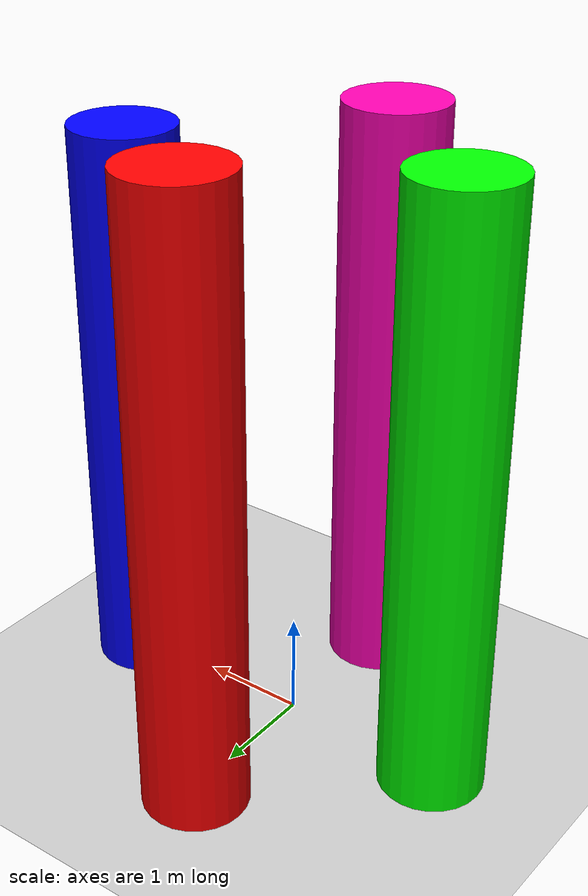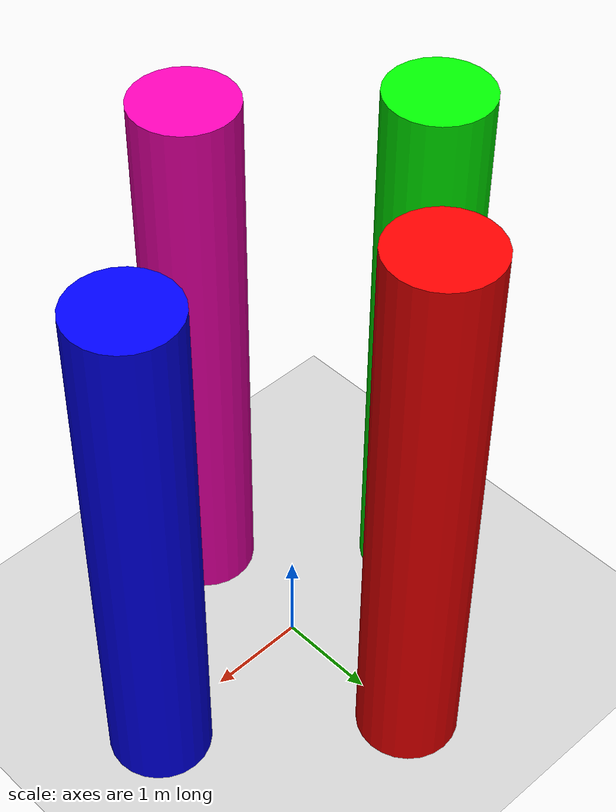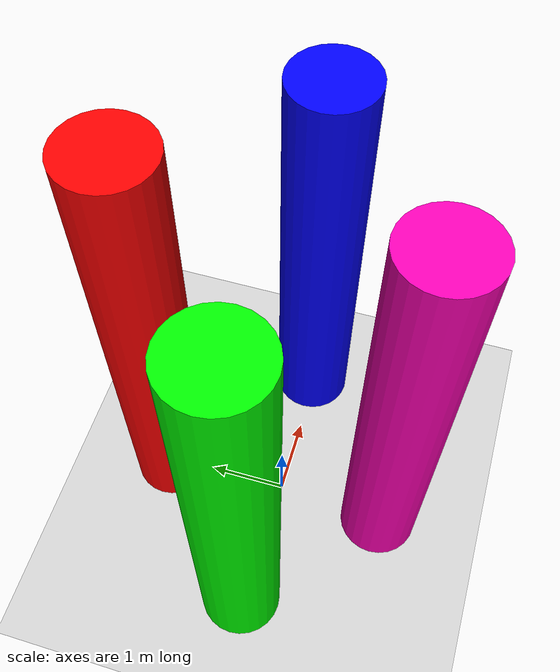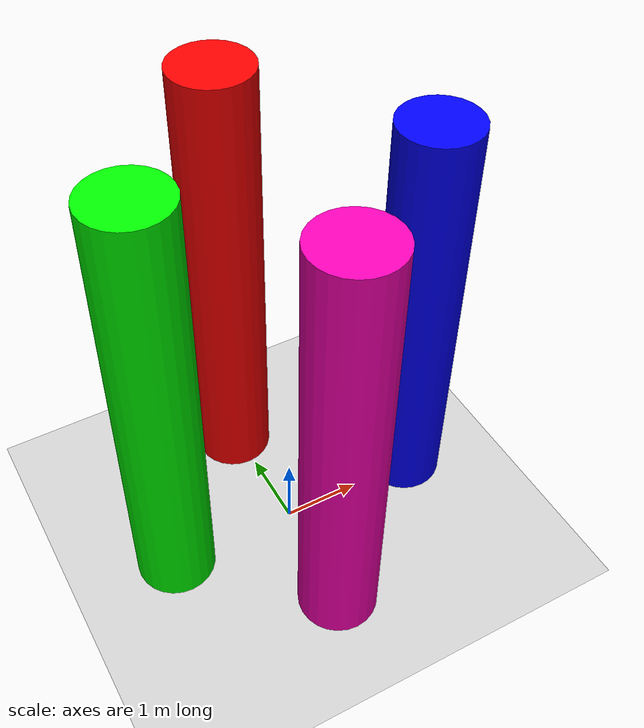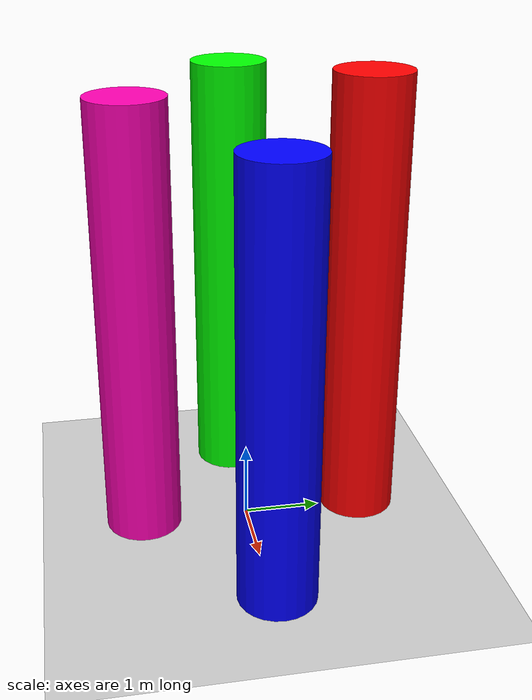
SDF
<sdf version="1.6">
 <world name="default">
  <light name="sun" type="directional">
   <pose>0 0 10 0 -0 0</pose>
   <diffuse>0.8 0.8 0.8 1</diffuse>
   <specular>0.1 0.1 0.1 1</specular>
   <attenuation>
    <range>1000</range>
    <constant>0.9</constant>
    <linear>0.01</linear>
    <quadratic>0.001</quadratic>
   </attenuation>
   <direction>-0.5 0.5 -1</direction>
  </light>
  <model name="ground_plane">
   <static>1</static>
   <link name="link">
    <collision name="collision">
     <geometry><plane><normal>0 0 1</normal><size>100 100</size></plane></geometry>
     <surface><friction><ode><mu>100</mu><mu2>50</mu2></ode></friction></surface>
    </collision>
    <visual name="visual">
     <cast_shadows>0</cast_shadows>
     <geometry><plane><normal>0 0 1</normal><size>100 100</size></plane></geometry>
     <material>
      <script><uri>file://media/materials/scripts/gazebo.material</uri><name>Gazebo/Grey</name></script>
     </material>
    </visual>
   </link>
  </model>
  <gravity>0 0 -9.8</gravity>
  <magnetic_field>6e-06 2.3e-05 -4.2e-05</magnetic_field>
  <atmosphere type="adiabatic"/>
  <physics name="default_physics" default="0" type="ode">
   <max_step_size>0.001</max_step_size>
   <real_time_factor>1</real_time_factor>
   <real_time_update_rate>1000</real_time_update_rate>
  </physics>
  <scene><ambient>0.4 0.4 0.4 1</ambient><background>0.7 0.7 0.7 1</background><shadows>1</shadows></scene>
  <spherical_coordinates>
   <surface_model>EARTH_WGS84</surface_model>
   <latitude_deg>0</latitude_deg>
   <longitude_deg>0</longitude_deg>
   <elevation>0</elevation>
   <heading_deg>0</heading_deg>
  </spherical_coordinates>
  <model name="unit_cylinder_0">
   <link name="link">
    <inertial>
     <mass>1</mass>
     <inertia><ixx>0.145833</ixx><ixy>0</ixy><ixz>0</ixz><iyy>0.145833</iyy><iyz>0</iyz><izz>0.125</izz></inertia>
    </inertial>
    <visual name="visual">
     <geometry><cylinder><radius>0.5</radius><length>5.56087</length></cylinder></geometry>
     <material>
      <script><name>Gazebo/Grey</name><uri>file://media/materials/scripts/gazebo.material</uri></script>
      <ambient>0 0 1 1</ambient>
      <diffuse>0 0 0 1</diffuse>
      <specular>0.01 0.01 0.01 1</specular>
      <emissive>0 0 0 1</emissive>
      <shader type="vertex"><normal_map>__default__</normal_map></shader>
     </material>
    </visual>
    <collision name="collision">
     <geometry><cylinder><radius>0.5</radius><length>5.56087</length></cylinder></geometry>
     <surface>
      <friction>
       <ode><mu>1</mu><mu2>1</mu2><fdir1>0 0 0</fdir1><slip1>0</slip1><slip2>0</slip2></ode>
       <torsional>
        <coefficient>1</coefficient>
        <patch_radius>0</patch_radius>
        <surface_radius>0</surface_radius>
        <use_patch_radius>1</use_patch_radius>
        <ode><slip>0</slip></ode>
       </torsional>
      </friction>
      <bounce><restitution_coefficient>0</restitution_coefficient><threshold>1e+06</threshold></bounce>
      <contact>
       <collide_without_contact>0</collide_without_contact>
       <collide_without_contact_bitmask>1</collide_without_contact_bitmask>
       <collide_bitmask>1</collide_bitmask>
       <ode>
        <soft_cfm>0</soft_cfm>
        <soft_erp>0.2</soft_erp>
        <kp>1e+13</kp>
        <kd>1</kd>
        <max_vel>0.01</max_vel>
        <min_depth>0</min_depth>
       </ode>
       <bullet>
        <split_impulse>1</split_impulse>
        <split_impulse_penetration_threshold>-0.01</split_impulse_penetration_threshold>
        <soft_cfm>0</soft_cfm>
        <soft_erp>0.2</soft_erp>
        <kp>1e+13</kp>
        <kd>1</kd>
       </bullet>
      </contact>
     </surface>
    </collision>
   </link>
   <static>0</static>
   <pose>1.8323 0.061546 2.78043 0 -0 0.001191</pose>
  </model>
  <model name="unit_cylinder_1">
   <link name="link">
    <inertial>
     <mass>1</mass>
     <inertia><ixx>0.145833</ixx><ixy>0</ixy><ixz>0</ixz><iyy>0.145833</iyy><iyz>0</iyz><izz>0.125</izz></inertia>
    </inertial>
    <visual name="visual">
     <geometry><cylinder><radius>0.5</radius><length>5.76835</length></cylinder></geometry>
     <material>
      <script><name>Gazebo/Grey</name><uri>file://media/materials/scripts/gazebo.material</uri></script>
      <ambient>0.5 0.5 0.3 1</ambient>
      <diffuse>1 0 0.7 1</diffuse>
      <specular>0.01 0.01 0.01 1</specular>
      <emissive>0 0 0 1</emissive>
      <shader type="vertex"><normal_map>__default__</normal_map></shader>
     </material>
    </visual>
    <collision name="collision">
     <geometry><cylinder><radius>0.5</radius><length>5.76835</length></cylinder></geometry>
     <surface>
      <friction>
       <ode><mu>1</mu><mu2>1</mu2><fdir1>0 0 0</fdir1><slip1>0</slip1><slip2>0</slip2></ode>
       <torsional>
        <coefficient>1</coefficient>
        <patch_radius>0</patch_radius>
        <surface_radius>0</surface_radius>
        <use_patch_radius>1</use_patch_radius>
        <ode><slip>0</slip></ode>
       </torsional>
      </friction>
      <bounce><restitution_coefficient>0</restitution_coefficient><threshold>1e+06</threshold></bounce>
      <contact>
       <collide_without_contact>0</collide_without_contact>
       <collide_without_contact_bitmask>1</collide_without_contact_bitmask>
       <collide_bitmask>1</collide_bitmask>
       <ode>
        <soft_cfm>0</soft_cfm>
        <soft_erp>0.2</soft_erp>
        <kp>1e+13</kp>
        <kd>1</kd>
        <max_vel>0.01</max_vel>
        <min_depth>0</min_depth>
       </ode>
       <bullet>
        <split_impulse>1</split_impulse>
        <split_impulse_penetration_threshold>-0.01</split_impulse_penetration_threshold>
        <soft_cfm>0</soft_cfm>
        <soft_erp>0.2</soft_erp>
        <kp>1e+13</kp>
        <kd>1</kd>
       </bullet>
      </contact>
     </surface>
    </collision>
   </link>
   <static>0</static>
   <pose>-0.067005 -1.38928 2.88417 0 -0 0.001794</pose>
  </model>
  <model name="unit_cylinder_2">
   <link name="link">
    <inertial>
     <mass>1</mass>
     <inertia><ixx>0.145833</ixx><ixy>0</ixy><ixz>0</ixz><iyy>0.145833</iyy><iyz>0</iyz><izz>0.125</izz></inertia>
    </inertial>
    <visual name="visual">
     <geometry><cylinder><radius>0.5</radius><length>5.84379</length></cylinder></geometry>
     <material>
      <script><name>Gazebo/Grey</name><uri>file://media/materials/scripts/gazebo.material</uri></script>
      <ambient>0 1 0 1</ambient>
      <diffuse>0 1 0 1</diffuse>
      <specular>0.01 0.01 0.01 1</specular>
      <emissive>0 0 0 1</emissive>
      <shader type="vertex"><normal_map>__default__</normal_map></shader>
     </material>
    </visual>
    <collision name="collision">
     <geometry><cylinder><radius>0.5</radius><length>5.84379</length></cylinder></geometry>
     <surface>
      <friction>
       <ode><mu>1</mu><mu2>1</mu2><fdir1>0 0 0</fdir1><slip1>0</slip1><slip2>0</slip2></ode>
       <torsional>
        <coefficient>1</coefficient>
        <patch_radius>0</patch_radius>
        <surface_radius>0</surface_radius>
        <use_patch_radius>1</use_patch_radius>
        <ode><slip>0</slip></ode>
       </torsional>
      </friction>
      <bounce><restitution_coefficient>0</restitution_coefficient><threshold>1e+06</threshold></bounce>
      <contact>
       <collide_without_contact>0</collide_without_contact>
       <collide_without_contact_bitmask>1</collide_without_contact_bitmask>
       <collide_bitmask>1</collide_bitmask>
       <ode>
        <soft_cfm>0</soft_cfm>
        <soft_erp>0.2</soft_erp>
        <kp>1e+13</kp>
        <kd>1</kd>
        <max_vel>0.01</max_vel>
        <min_depth>0</min_depth>
       </ode>
       <bullet>
        <split_impulse>1</split_impulse>
        <split_impulse_penetration_threshold>-0.01</split_impulse_penetration_threshold>
        <soft_cfm>0</soft_cfm>
        <soft_erp>0.2</soft_erp>
        <kp>1e+13</kp>
        <kd>1</kd>
       </bullet>
      </contact>
     </surface>
    </collision>
   </link>
   <static>0</static>
   <pose>-1.62797 0.065975 2.92189 0 -0 0.000349</pose>
  </model>
  <model name="unit_cylinder_3">
   <link name="link">
    <inertial>
     <mass>1</mass>
     <inertia><ixx>0.145833</ixx><ixy>0</ixy><ixz>0</ixz><iyy>0.145833</iyy><iyz>0</iyz><izz>0.125</izz></inertia>
    </inertial>
    <visual name="visual">
     <geometry><cylinder><radius>0.5</radius><length>5.97237</length></cylinder></geometry>
     <material>
      <script><name>Gazebo/Grey</name><uri>file://media/materials/scripts/gazebo.material</uri></script>
      <ambient>1 0 0 1</ambient>
      <diffuse>1 0 0 1</diffuse>
      <specular>0.01 0.01 0.01 1</specular>
      <emissive>0 0 0 1</emissive>
      <shader type="vertex"><normal_map>__default__</normal_map></shader>
     </material>
    </visual>
    <collision name="collision">
     <geometry><cylinder><radius>0.5</radius><length>5.97237</length></cylinder></geometry>
     <surface>
      <friction>
       <ode><mu>1</mu><mu2>1</mu2><fdir1>0 0 0</fdir1><slip1>0</slip1><slip2>0</slip2></ode>
       <torsional>
        <coefficient>1</coefficient>
        <patch_radius>0</patch_radius>
        <surface_radius>0</surface_radius>
        <use_patch_radius>1</use_patch_radius>
        <ode><slip>0</slip></ode>
       </torsional>
      </friction>
      <bounce><restitution_coefficient>0</restitution_coefficient><threshold>1e+06</threshold></bounce>
      <contact>
       <collide_without_contact>0</collide_without_contact>
       <collide_without_contact_bitmask>1</collide_without_contact_bitmask>
       <collide_bitmask>1</collide_bitmask>
       <ode>
        <soft_cfm>0</soft_cfm>
        <soft_erp>0.2</soft_erp>
        <kp>1e+13</kp>
        <kd>1</kd>
        <max_vel>0.01</max_vel>
        <min_depth>0</min_depth>
       </ode>
       <bullet>
        <split_impulse>1</split_impulse>
        <split_impulse_penetration_threshold>-0.01</split_impulse_penetration_threshold>
        <soft_cfm>0</soft_cfm>
        <soft_erp>0.2</soft_erp>
        <kp>1e+13</kp>
        <kd>1</kd>
       </bullet>
      </contact>
     </surface>
    </collision>
   </link>
   <static>0</static>
   <pose>-0.053824 1.56479 2.98618 0 0 -0.000304</pose>
  </model>
 </world>
</sdf>
